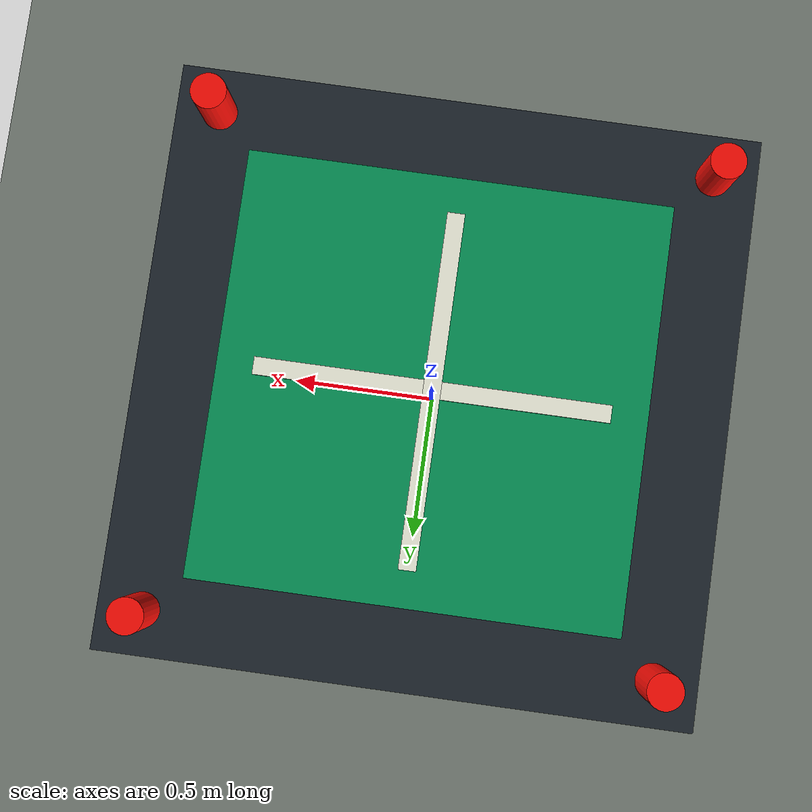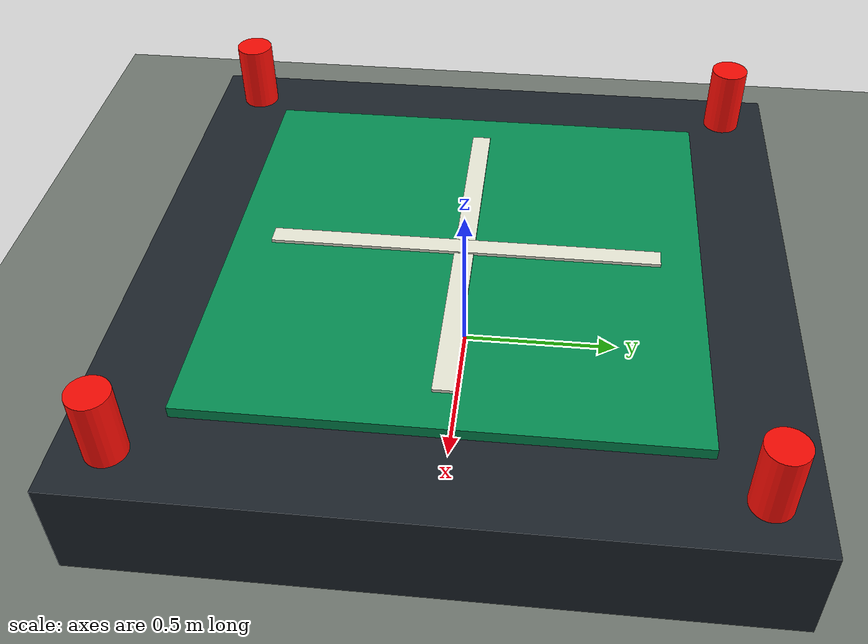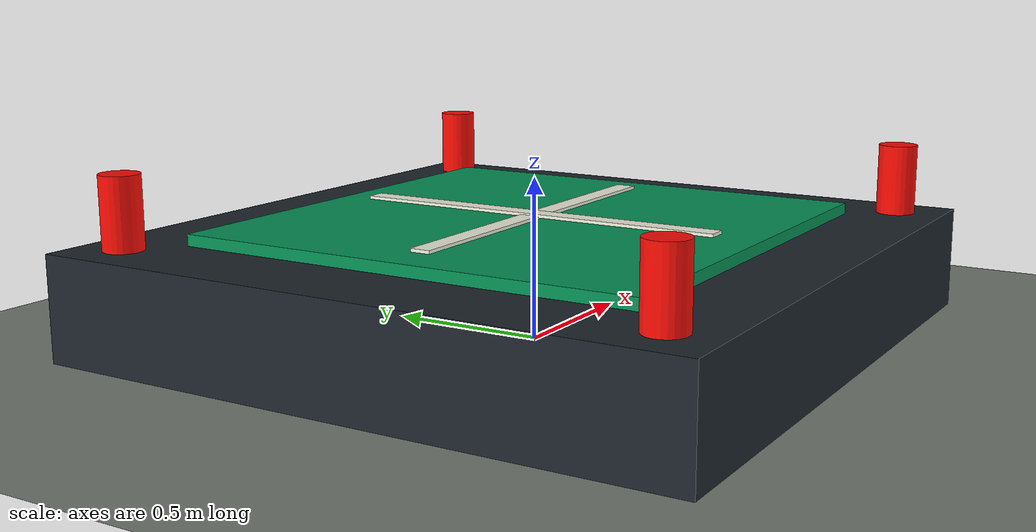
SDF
<sdf version="1.9">
 <world name="ugv_landing">
  <plugin filename="ignition-gazebo-physics-system" name="ignition::gazebo::systems::Physics"/>
  <plugin filename="ignition-gazebo-user-commands-system" name="ignition::gazebo::systems::UserCommands"/>
  <plugin filename="ignition-gazebo-scene-broadcaster-system" name="ignition::gazebo::systems::SceneBroadcaster"/>
  <gravity>0 0 -9.80665</gravity>
  <magnetic_field>6e-06 2.3e-05 -4.2e-05</magnetic_field>
  <atmosphere type="adiabatic"/>
  <scene>
   <ambient>0.45 0.48 0.52 1</ambient>
   <background>0.74 0.78 0.82 1</background>
   <shadows>true</shadows>
  </scene>
  <light name="sun" type="directional">
   <pose>0 0 8 0 0 0</pose>
   <intensity>1.0</intensity>
   <direction>-0.4 0.3 -0.85</direction>
   <diffuse>0.9 0.88 0.82 1</diffuse>
   <specular>0.2 0.2 0.2 1</specular>
  </light>
  <model name="ground_plane">
   <static>true</static>
   <link name="link">
    <collision name="collision">
     <geometry><plane><normal>0 0 1</normal><size>40 40</size></plane></geometry>
    </collision>
    <visual name="visual">
     <geometry><plane><normal>0 0 1</normal><size>40 40</size></plane></geometry>
     <material><ambient>0.46 0.49 0.46 1</ambient><diffuse>0.46 0.49 0.46 1</diffuse></material>
    </visual>
   </link>
  </model>
  <model name="ugv">
   <pose>0 0 0.18 0 0 0</pose>
   <link name="base_link">
    <inertial><mass>30</mass><inertia><ixx>5.2</ixx><iyy>5.2</iyy><izz>8.0</izz></inertia></inertial>
    <collision name="body_collision"><geometry><box><size>2.0 2.0 0.32</size></box></geometry></collision>
    <visual name="body_visual">
     <geometry><box><size>2.0 2.0 0.32</size></box></geometry>
     <material>
      <ambient>0.12 0.15 0.18 1</ambient>
      <diffuse>0.12 0.15 0.18 1</diffuse>
      <specular>0.08 0.08 0.08 1</specular>
     </material>
    </visual>
    <visual name="landing_pad_visual">
     <pose>0 0 0.18 0 0 0</pose>
     <geometry><box><size>1.45 1.45 0.035</size></box></geometry>
     <material><ambient>0.02 0.42 0.26 1</ambient><diffuse>0.02 0.58 0.34 1</diffuse></material>
    </visual>
    <visual name="landing_cross_x">
     <pose>0 0 0.205 0 0 0</pose>
     <geometry><box><size>1.20 0.06 0.01</size></box></geometry>
     <material><ambient>0.95 0.95 0.88 1</ambient><diffuse>0.95 0.95 0.88 1</diffuse></material>
    </visual>
    <visual name="landing_cross_y">
     <pose>0 0 0.21 0 0 0</pose>
     <geometry><box><size>0.06 1.20 0.01</size></box></geometry>
     <material><ambient>0.95 0.95 0.88 1</ambient><diffuse>0.95 0.95 0.88 1</diffuse></material>
    </visual>
   </link>
  </model>
  <model name="anchor_5478">
   <static>true</static>
   <pose>0.85 0.85 0.45 0 0 0</pose>
   <link name="link">
    <visual name="visual">
     <geometry><cylinder><radius>0.06</radius><length>0.22</length></cylinder></geometry>
     <material><ambient>1.0 0.05 0.02 1</ambient><diffuse>1.0 0.05 0.02 1</diffuse></material>
    </visual>
   </link>
  </model>
  <model name="anchor_2479">
   <static>true</static>
   <pose>0.85 -0.85 0.45 0 0 0</pose>
   <link name="link">
    <visual name="visual">
     <geometry><cylinder><radius>0.06</radius><length>0.22</length></cylinder></geometry>
     <material><ambient>1.0 0.05 0.02 1</ambient><diffuse>1.0 0.05 0.02 1</diffuse></material>
    </visual>
   </link>
  </model>
  <model name="anchor_4248">
   <static>true</static>
   <pose>-0.85 -0.85 0.45 0 0 0</pose>
   <link name="link">
    <visual name="visual">
     <geometry><cylinder><radius>0.06</radius><length>0.22</length></cylinder></geometry>
     <material><ambient>1.0 0.05 0.02 1</ambient><diffuse>1.0 0.05 0.02 1</diffuse></material>
    </visual>
   </link>
  </model>
  <model name="anchor_f678">
   <static>true</static>
   <pose>-0.85 0.85 0.45 0 0 0</pose>
   <link name="link">
    <visual name="visual">
     <geometry><cylinder><radius>0.06</radius><length>0.22</length></cylinder></geometry>
     <material><ambient>1.0 0.05 0.02 1</ambient><diffuse>1.0 0.05 0.02 1</diffuse></material>
    </visual>
   </link>
  </model>
 </world>
</sdf>
